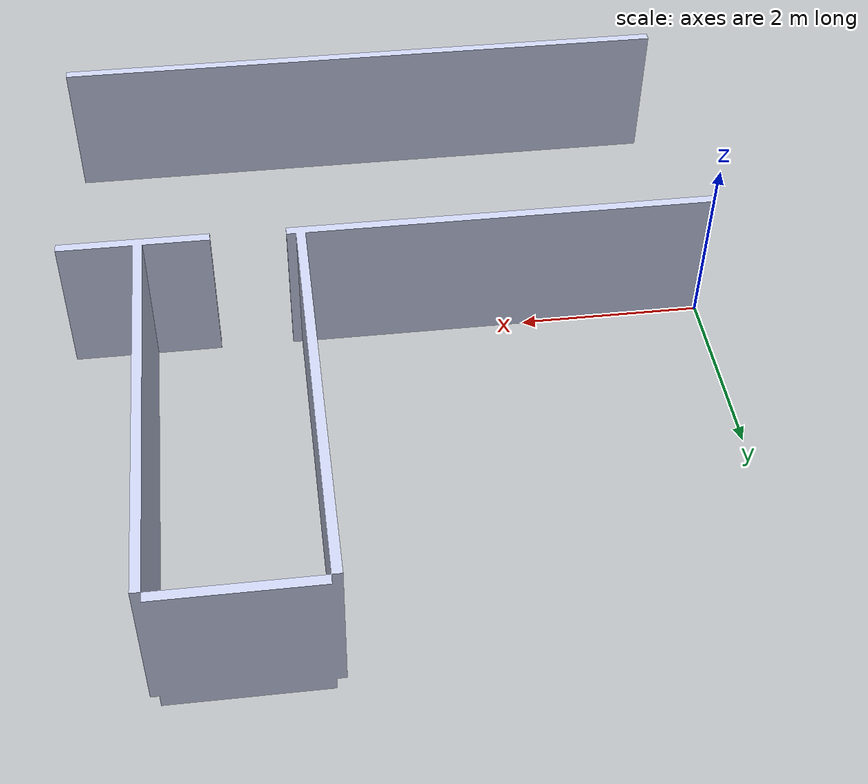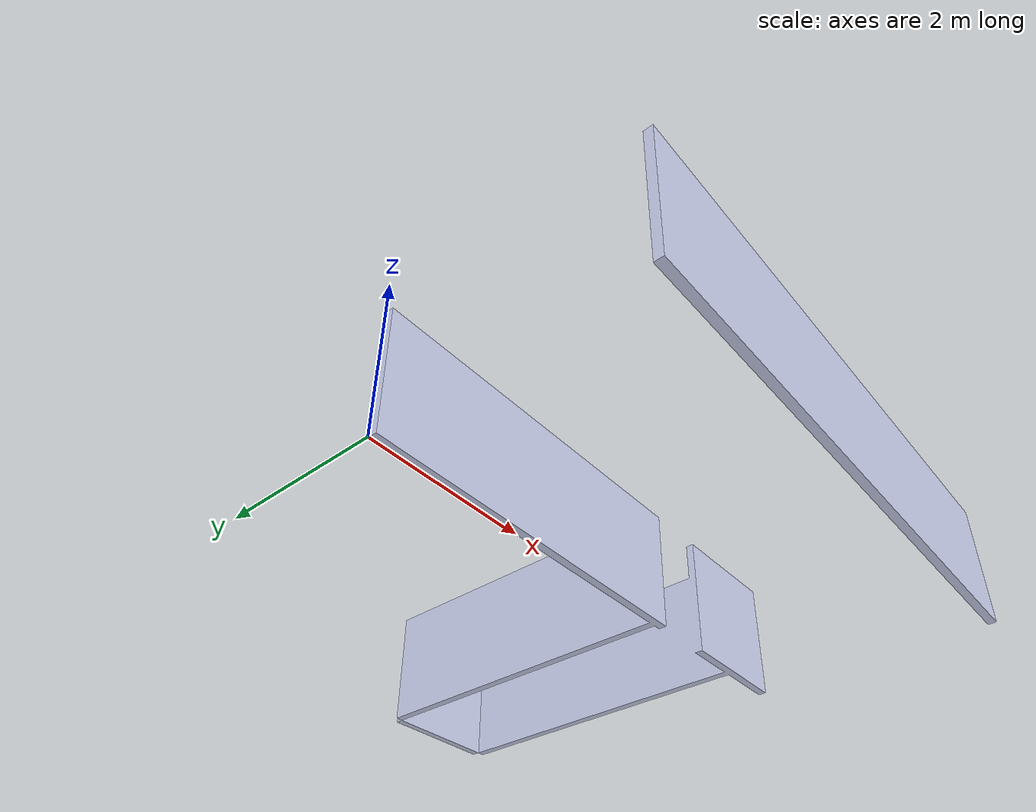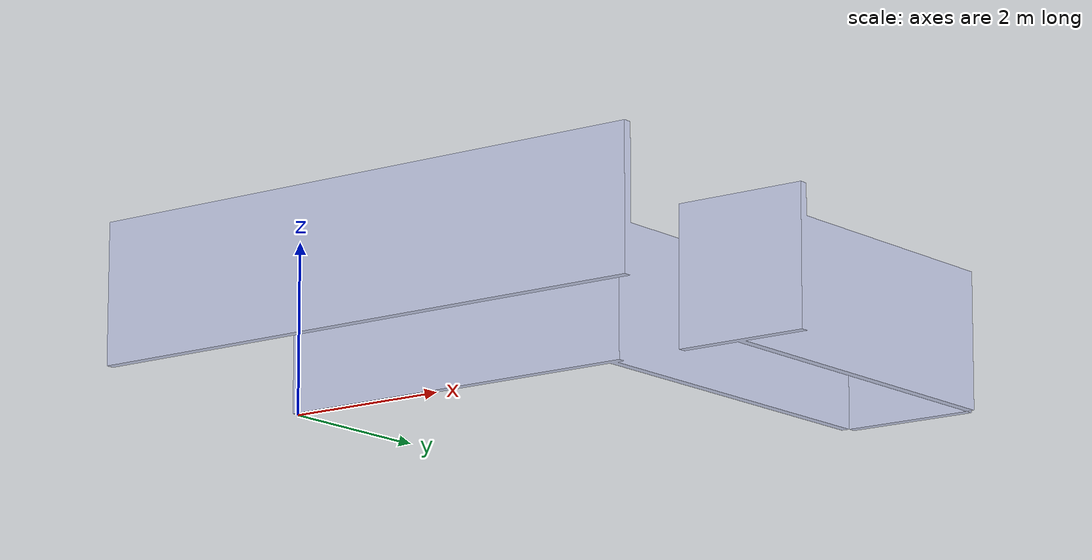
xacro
<?xml version="1.0"?>
<robot xmlns:xacro="http://www.ros.org/wiki/xacro" name="workshop_map_2">
  <link
    name="map_link">
    <inertial>
      <origin
        xyz="4.24237288135595 0.174576271186442 0.800000000000001"
        rpy="0 0 0" />
      <mass
        value="3776" />
      <inertia
        ixx="5851.09333333324"
        ixy="-1719.51999999999"
        ixz="1.4147692057215E-12"
        iyy="8450.84088888889"
        iyz="7.72009770925547E-13"
        izz="12690.8408888888" />
    </inertial>
    <visual>
      <origin
        xyz="0 0 0"
        rpy="0 0 0" />
      <geometry>
        <mesh
          filename="file:///$(find my_robot_description)/meshes/map_2/map_link.STL" />
      </geometry>
      <material
        name="">
        <color
          rgba="0.792156862745098 0.819607843137255 0.933333333333333 1" />
      </material>
    </visual>
    <collision>
      <origin
        xyz="0 0 0"
        rpy="0 0 0" />
      <geometry>
        <mesh
          filename="file:///$(find my_robot_description)/meshes/map_2/map_link.STL" />
      </geometry>
    </collision>
  </link>
</robot>
